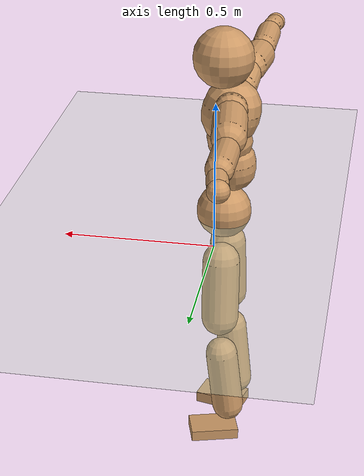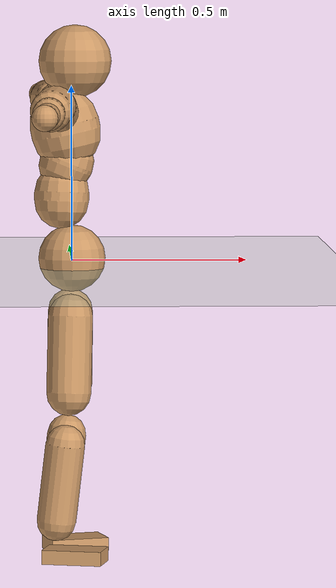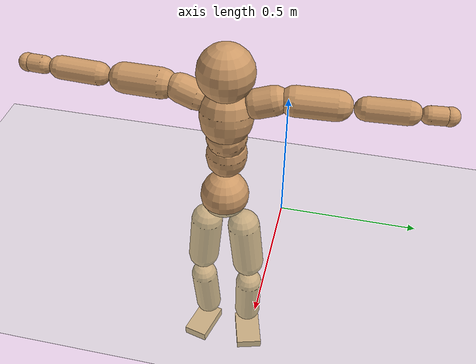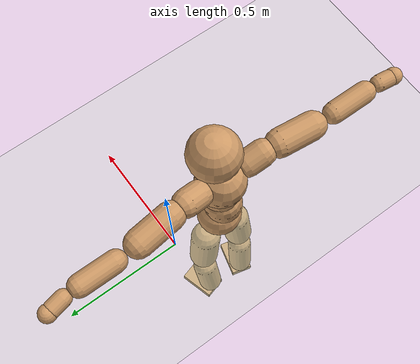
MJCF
<mujoco model="humanoid">
  <compiler coordinate="local"/>
  <default>
    <joint damping="0.0" armature="0.01" stiffness="0.0" limited="true"/>
    <geom conaffinity="1" condim="3" contype="7" margin="0.001" rgba="0.8 0.6 .4 1"/>
  </default>
  <asset>
    <texture type="skybox" builtin="gradient" rgb1=".4 .5 .6" rgb2="0 0 0" width="100" height="100"/>
    <texture builtin="flat" height="1278" mark="cross" markrgb="1 1 1" name="texgeom" random="0.01" rgb1="0.8 0.6 0.4" rgb2="0.8 0.6 0.4" type="cube" width="127"/>
    <texture builtin="checker" height="100" name="texplane" rgb1="0 0 0" rgb2="0.8 0.8 0.8" type="2d" width="100"/>
    <material name="MatPlane" reflectance="0.5" shininess="1" specular="1" texrepeat="60 60" texture="texplane"/>
    <material name="geom" texture="texgeom" texuniform="true"/>
  </asset>
  <worldbody>
    <light cutoff="100" diffuse="1 1 1" dir="-0 0 -1.3" directional="true" exponent="1" pos="0 0 1.3" specular=".1 .1 .1"/>
    <geom conaffinity="1" condim="3" name="floor" pos="0 0 0" rgba="0.8 0.9 0.8 1" size="100 100 .2" type="plane" material="MatPlane"/>
    <body name="Pelvis" pos="-0.0019 -0.2222 0.0261">
      <freejoint name="Pelvis"/>
      <geom type="sphere" contype="1" conaffinity="1" density="500" size="0.0938" pos="0.0000 0.0000 0.0000" name="Pelvis"/>
      <body name="L_Hip" pos="-0.0035 0.069 -0.0865">
        <joint name="L_Hip_x" type="hinge" pos="0 0 0" axis="1 0 0" stiffness="800" damping="80" armature="0.02" range="-180.0000 180.0000"/>
        <joint name="L_Hip_y" type="hinge" pos="0 0 0" axis="0 1 0" stiffness="800" damping="80" armature="0.02" range="-180.0000 180.0000"/>
        <joint name="L_Hip_z" type="hinge" pos="0 0 0" axis="0 0 1" stiffness="800" damping="80" armature="0.02" range="-180.0000 180.0000"/>
        <geom type="capsule" contype="1" conaffinity="1" density="500" fromto="-0.0006 0.0068 -0.0703 -0.0024 0.0273 -0.2812" size="0.0638" name="L_Hip"/>
        <body name="L_Knee" pos="-0.0029 0.0341 -0.3515">
          <joint name="L_Knee_x" type="hinge" pos="0 0 0" axis="1 0 0" stiffness="800" damping="80" armature="0.02" range="-180.0000 180.0000"/>
          <joint name="L_Knee_y" type="hinge" pos="0 0 0" axis="0 1 0" stiffness="800" damping="80" armature="0.02" range="-180.0000 180.0000"/>
          <joint name="L_Knee_z" type="hinge" pos="0 0 0" axis="0 0 1" stiffness="800" damping="80" armature="0.02" range="-180.0000 180.0000"/>
          <geom type="capsule" contype="1" conaffinity="1" density="500" fromto="-0.0084 -0.0026 -0.0725 -0.0335 -0.0105 -0.2900" size="0.055" name="L_Knee"/>
          <body name="L_Ankle" pos="-0.0419 -0.0131 -0.3624">
            <joint name="L_Ankle_x" type="hinge" pos="0 0 0" axis="1 0 0" stiffness="800" damping="80" armature="0.02" range="-180.0000 180.0000"/>
            <joint name="L_Ankle_y" type="hinge" pos="0 0 0" axis="0 1 0" stiffness="800" damping="80" armature="0.02" range="-180.0000 180.0000"/>
            <joint name="L_Ankle_z" type="hinge" pos="0 0 0" axis="0 0 1" stiffness="800" damping="80" armature="0.02" range="-180.0000 180.0000"/>
            <geom type="box" contype="1" conaffinity="1" density="500" pos="0.0574 0.0165 -0.0256" size="0.0829 0.053 0.019" quat="0.9903 0.0000 0.0000 0.1392" name="L_Ankle"/>
            <body name="L_Toe" pos="0.1148 0.0329 -0.0512">
              <joint name="L_Toe_x" type="hinge" pos="0 0 0" axis="1 0 0" stiffness="500" damping="50" armature="0.02" range="-180.0000 180.0000"/>
              <joint name="L_Toe_y" type="hinge" pos="0 0 0" axis="0 1 0" stiffness="500" damping="50" armature="0.02" range="-180.0000 180.0000"/>
              <joint name="L_Toe_z" type="hinge" pos="0 0 0" axis="0 0 1" stiffness="500" damping="50" armature="0.02" range="-180.0000 180.0000"/>
              <geom type="box" contype="1" conaffinity="1" density="500" pos="0.0000 0.0000 0.0254" size="0.0011 0.0025 0.0009" quat="0.9895 0.0000 0.0000 0.1447" name="L_Toe"/>
            </body>
          </body>
        </body>
      </body>
      <body name="R_Hip" pos="-0.0038 -0.0679 -0.0852">
        <joint name="R_Hip_x" type="hinge" pos="0 0 0" axis="1 0 0" stiffness="800" damping="80" armature="0.02" range="-180.0000 180.0000"/>
        <joint name="R_Hip_y" type="hinge" pos="0 0 0" axis="0 1 0" stiffness="800" damping="80" armature="0.02" range="-180.0000 180.0000"/>
        <joint name="R_Hip_z" type="hinge" pos="0 0 0" axis="0 0 1" stiffness="800" damping="80" armature="0.02" range="-180.0000 180.0000"/>
        <geom type="capsule" contype="1" conaffinity="1" density="500" fromto="-0.0018 -0.0070 -0.0712 -0.0073 -0.0279 -0.2847" size="0.0626" name="R_Hip"/>
        <body name="R_Knee" pos="-0.0091 -0.0349 -0.3558">
          <joint name="R_Knee_x" type="hinge" pos="0 0 0" axis="1 0 0" stiffness="800" damping="80" armature="0.02" range="-180.0000 180.0000"/>
          <joint name="R_Knee_y" type="hinge" pos="0 0 0" axis="0 1 0" stiffness="800" damping="80" armature="0.02" range="-180.0000 180.0000"/>
          <joint name="R_Knee_z" type="hinge" pos="0 0 0" axis="0 0 1" stiffness="800" damping="80" armature="0.02" range="-180.0000 180.0000"/>
          <geom type="capsule" contype="1" conaffinity="1" density="500" fromto="-0.0083 0.0029 -0.0725 -0.0334 0.0115 -0.2898" size="0.0549" name="R_Knee"/>
          <body name="R_Ankle" pos="-0.0417 0.0143 -0.3623">
            <joint name="R_Ankle_x" type="hinge" pos="0 0 0" axis="1 0 0" stiffness="800" damping="80" armature="0.02" range="-180.0000 180.0000"/>
            <joint name="R_Ankle_y" type="hinge" pos="0 0 0" axis="0 1 0" stiffness="800" damping="80" armature="0.02" range="-180.0000 180.0000"/>
            <joint name="R_Ankle_z" type="hinge" pos="0 0 0" axis="0 0 1" stiffness="800" damping="80" armature="0.02" range="-180.0000 180.0000"/>
            <geom type="box" contype="1" conaffinity="1" density="500" pos="0.0599 -0.0148 -0.0231" size="0.0842 0.0503 0.0199" quat="0.9927 0.0000 0.0000 -0.1207" name="R_Ankle"/>
            <body name="R_Toe" pos="0.1197 -0.0295 -0.0462">
              <joint name="R_Toe_x" type="hinge" pos="0 0 0" axis="1 0 0" stiffness="500" damping="50" armature="0.02" range="-180.0000 180.0000"/>
              <joint name="R_Toe_y" type="hinge" pos="0 0 0" axis="0 1 0" stiffness="500" damping="50" armature="0.02" range="-180.0000 180.0000"/>
              <joint name="R_Toe_z" type="hinge" pos="0 0 0" axis="0 0 1" stiffness="500" damping="50" armature="0.02" range="-180.0000 180.0000"/>
              <geom type="box" contype="1" conaffinity="1" density="500" pos="0.0000 0.0000 0.0242" size="0.001 0.0025 0.0011" quat="0.9938 0.0000 0.0000 -0.1110" name="R_Toe"/>
            </body>
          </body>
        </body>
      </body>
      <body name="Torso" pos="-0.0313 -0.0023 0.107">
        <joint name="Torso_x" type="hinge" pos="0 0 0" axis="1 0 0" stiffness="1000" damping="100" armature="0.02" range="-180.0000 180.0000"/>
        <joint name="Torso_y" type="hinge" pos="0 0 0" axis="0 1 0" stiffness="1000" damping="100" armature="0.02" range="-180.0000 180.0000"/>
        <joint name="Torso_z" type="hinge" pos="0 0 0" axis="0 0 1" stiffness="1000" damping="100" armature="0.02" range="-180.0000 180.0000"/>
        <geom type="capsule" contype="1" conaffinity="1" density="500" fromto="0.0033 0.0041 0.0792 0.0022 0.0027 0.0528" size="0.0768" name="Torso"/>
        <body name="Spine" pos="0.0055 0.0068 0.1319">
          <joint name="Spine_x" type="hinge" pos="0 0 0" axis="1 0 0" stiffness="1000" damping="100" armature="0.02" range="-180.0000 180.0000"/>
          <joint name="Spine_y" type="hinge" pos="0 0 0" axis="0 1 0" stiffness="1000" damping="100" armature="0.02" range="-180.0000 180.0000"/>
          <joint name="Spine_z" type="hinge" pos="0 0 0" axis="0 0 1" stiffness="1000" damping="100" armature="0.02" range="-180.0000 180.0000"/>
          <geom type="capsule" contype="1" conaffinity="1" density="500" fromto="0.0131 0.0004 0.0318 0.0087 0.0003 0.0212" size="0.0756" name="Spine"/>
          <body name="Chest" pos="0.0219 0.0006 0.0531">
            <joint name="Chest_x" type="hinge" pos="0 0 0" axis="1 0 0" stiffness="1000" damping="100" armature="0.02" range="-180.0000 180.0000"/>
            <joint name="Chest_y" type="hinge" pos="0 0 0" axis="0 1 0" stiffness="1000" damping="100" armature="0.02" range="-180.0000 180.0000"/>
            <joint name="Chest_z" type="hinge" pos="0 0 0" axis="0 0 1" stiffness="1000" damping="100" armature="0.02" range="-180.0000 180.0000"/>
            <geom type="capsule" contype="1" conaffinity="1" density="500" fromto="-0.0170 -0.0014 0.0859 -0.0113 -0.0009 0.0573" size="0.0981" name="Chest"/>
            <body name="Neck" pos="-0.0318 -0.0023 0.1994">
              <joint name="Neck_x" type="hinge" pos="0 0 0" axis="1 0 0" stiffness="500" damping="50" armature="0.02" range="-180.0000 180.0000"/>
              <joint name="Neck_y" type="hinge" pos="0 0 0" axis="0 1 0" stiffness="500" damping="50" armature="0.02" range="-180.0000 180.0000"/>
              <joint name="Neck_z" type="hinge" pos="0 0 0" axis="0 0 1" stiffness="500" damping="50" armature="0.02" range="-180.0000 180.0000"/>
              <geom type="capsule" contype="1" conaffinity="1" density="500" fromto="0.0091 0.0012 0.0119 0.0365 0.0050 0.0477" size="0.045" name="Neck"/>
              <body name="Head" pos="0.0456 0.0062 0.0596">
                <joint name="Head_x" type="hinge" pos="0 0 0" axis="1 0 0" stiffness="500" damping="50" armature="0.02" range="-180.0000 180.0000"/>
                <joint name="Head_y" type="hinge" pos="0 0 0" axis="0 1 0" stiffness="500" damping="50" armature="0.02" range="-180.0000 180.0000"/>
                <joint name="Head_z" type="hinge" pos="0 0 0" axis="0 0 1" stiffness="500" damping="50" armature="0.02" range="-180.0000 180.0000"/>
                <geom type="sphere" contype="1" conaffinity="1" density="500" size="0.1017" pos="0.0000 0.0000 0.0000" name="Head"/>
              </body>
            </body>
            <body name="L_Thorax" pos="-0.0241 0.0831 0.1169">
              <joint name="L_Thorax_x" type="hinge" pos="0 0 0" axis="1 0 0" stiffness="500" damping="50" armature="0.02" range="-180.0000 180.0000"/>
              <joint name="L_Thorax_y" type="hinge" pos="0 0 0" axis="0 1 0" stiffness="500" damping="50" armature="0.02" range="-180.0000 180.0000"/>
              <joint name="L_Thorax_z" type="hinge" pos="0 0 0" axis="0 0 1" stiffness="500" damping="50" armature="0.02" range="-180.0000 180.0000"/>
              <geom type="capsule" contype="1" conaffinity="1" density="500" fromto="-0.0025 0.0198 0.0058 -0.0101 0.0791 0.0233" size="0.0538" name="L_Thorax"/>
              <body name="L_Shoulder" pos="-0.0126 0.0989 0.0291">
                <joint name="L_Shoulder_x" type="hinge" pos="0 0 0" axis="1 0 0" stiffness="500" damping="50" armature="0.02" range="-720.0000 720.0000"/>
                <joint name="L_Shoulder_y" type="hinge" pos="0 0 0" axis="0 1 0" stiffness="500" damping="50" armature="0.02" range="-720.0000 720.0000"/>
                <joint name="L_Shoulder_z" type="hinge" pos="0 0 0" axis="0 0 1" stiffness="500" damping="50" armature="0.02" range="-720.0000 720.0000"/>
                <geom type="capsule" contype="1" conaffinity="1" density="500" fromto="-0.0051 0.0486 -0.0021 -0.0206 0.1944 -0.0085" size="0.0549" name="L_Shoulder"/>
                <body name="L_Elbow" pos="-0.0257 0.243 -0.0107">
                  <joint name="L_Elbow_x" type="hinge" pos="0 0 0" axis="1 0 0" stiffness="500" damping="50" armature="0.02" range="-720.0000 720.0000"/>
                  <joint name="L_Elbow_y" type="hinge" pos="0 0 0" axis="0 1 0" stiffness="500" damping="50" armature="0.02" range="-720.0000 720.0000"/>
                  <joint name="L_Elbow_z" type="hinge" pos="0 0 0" axis="0 0 1" stiffness="500" damping="50" armature="0.02" range="-720.0000 720.0000"/>
                  <geom type="capsule" contype="1" conaffinity="1" density="500" fromto="-0.0004 0.0480 0.0015 -0.0015 0.1919 0.0061" size="0.0426" name="L_Elbow"/>
                  <body name="L_Wrist" pos="-0.0019 0.2398 0.0076">
                    <joint name="L_Wrist_x" type="hinge" pos="0 0 0" axis="1 0 0" stiffness="300" damping="30" armature="0.02" range="-180.0000 180.0000"/>
                    <joint name="L_Wrist_y" type="hinge" pos="0 0 0" axis="0 1 0" stiffness="300" damping="30" armature="0.02" range="-180.0000 180.0000"/>
                    <joint name="L_Wrist_z" type="hinge" pos="0 0 0" axis="0 0 1" stiffness="300" damping="30" armature="0.02" range="-180.0000 180.0000"/>
                    <geom type="capsule" contype="1" conaffinity="1" density="500" fromto="-0.0032 0.0170 -0.0012 -0.0129 0.0680 -0.0048" size="0.0326" name="L_Wrist"/>
                    <body name="L_Hand" pos="-0.0161 0.085 -0.006">
                      <joint name="L_Hand_x" type="hinge" pos="0 0 0" axis="1 0 0" stiffness="300" damping="30" armature="0.02" range="-180.0000 180.0000"/>
                      <joint name="L_Hand_y" type="hinge" pos="0 0 0" axis="0 1 0" stiffness="300" damping="30" armature="0.02" range="-180.0000 180.0000"/>
                      <joint name="L_Hand_z" type="hinge" pos="0 0 0" axis="0 0 1" stiffness="300" damping="30" armature="0.02" range="-180.0000 180.0000"/>
                      <geom type="sphere" contype="1" conaffinity="1" density="500" size="0.0340" pos="0.0000 0.0000 0.0000" name="L_Hand"/>
                    </body>
                  </body>
                </body>
              </body>
            </body>
            <body name="R_Thorax" pos="-0.029 -0.0877 0.1132">
              <joint name="R_Thorax_x" type="hinge" pos="0 0 0" axis="1 0 0" stiffness="500" damping="50" armature="0.02" range="-180.0000 180.0000"/>
              <joint name="R_Thorax_y" type="hinge" pos="0 0 0" axis="0 1 0" stiffness="500" damping="50" armature="0.02" range="-180.0000 180.0000"/>
              <joint name="R_Thorax_z" type="hinge" pos="0 0 0" axis="0 0 1" stiffness="500" damping="50" armature="0.02" range="-180.0000 180.0000"/>
              <geom type="capsule" contype="1" conaffinity="1" density="500" fromto="-0.0021 -0.0212 0.0066 -0.0082 -0.0849 0.0263" size="0.0531" name="R_Thorax"/>
              <body name="R_Shoulder" pos="-0.0103 -0.1061 0.0329">
                <joint name="R_Shoulder_x" type="hinge" pos="0 0 0" axis="1 0 0" stiffness="500" damping="50" armature="0.02" range="-720.0000 720.0000"/>
                <joint name="R_Shoulder_y" type="hinge" pos="0 0 0" axis="0 1 0" stiffness="500" damping="50" armature="0.02" range="-720.0000 720.0000"/>
                <joint name="R_Shoulder_z" type="hinge" pos="0 0 0" axis="0 0 1" stiffness="500" damping="50" armature="0.02" range="-720.0000 720.0000"/>
                <geom type="capsule" contype="1" conaffinity="1" density="500" fromto="-0.0044 -0.0479 -0.0024 -0.0176 -0.1917 -0.0095" size="0.0562" name="R_Shoulder"/>
                <body name="R_Elbow" pos="-0.022 -0.2396 -0.0119">
                  <joint name="R_Elbow_x" type="hinge" pos="0 0 0" axis="1 0 0" stiffness="500" damping="50" armature="0.02" range="-720.0000 720.0000"/>
                  <joint name="R_Elbow_y" type="hinge" pos="0 0 0" axis="0 1 0" stiffness="500" damping="50" armature="0.02" range="-720.0000 720.0000"/>
                  <joint name="R_Elbow_z" type="hinge" pos="0 0 0" axis="0 0 1" stiffness="500" damping="50" armature="0.02" range="-720.0000 720.0000"/>
                  <geom type="capsule" contype="1" conaffinity="1" density="500" fromto="-0.0009 -0.0489 0.0012 -0.0034 -0.1955 0.0050" size="0.043" name="R_Elbow"/>
                  <body name="R_Wrist" pos="-0.0043 -0.2444 0.0062">
                    <joint name="R_Wrist_x" type="hinge" pos="0 0 0" axis="1 0 0" stiffness="300" damping="30" armature="0.02" range="-180.0000 180.0000"/>
                    <joint name="R_Wrist_y" type="hinge" pos="0 0 0" axis="0 1 0" stiffness="300" damping="30" armature="0.02" range="-180.0000 180.0000"/>
                    <joint name="R_Wrist_z" type="hinge" pos="0 0 0" axis="0 0 1" stiffness="300" damping="30" armature="0.02" range="-180.0000 180.0000"/>
                    <geom type="capsule" contype="1" conaffinity="1" density="500" fromto="-0.0019 -0.0171 -0.0009 -0.0078 -0.0684 -0.0035" size="0.0334" name="R_Wrist"/>
                    <body name="R_Hand" pos="-0.0097 -0.0856 -0.0044">
                      <joint name="R_Hand_x" type="hinge" pos="0 0 0" axis="1 0 0" stiffness="300" damping="30" armature="0.02" range="-180.0000 180.0000"/>
                      <joint name="R_Hand_y" type="hinge" pos="0 0 0" axis="0 1 0" stiffness="300" damping="30" armature="0.02" range="-180.0000 180.0000"/>
                      <joint name="R_Hand_z" type="hinge" pos="0 0 0" axis="0 0 1" stiffness="300" damping="30" armature="0.02" range="-180.0000 180.0000"/>
                      <geom type="sphere" contype="1" conaffinity="1" density="500" size="0.0345" pos="0.0000 0.0000 0.0000" name="R_Hand"/>
                    </body>
                  </body>
                </body>
              </body>
            </body>
          </body>
        </body>
      </body>
    </body>
  </worldbody>
  <actuator>
    <motor name="L_Hip_x" joint="L_Hip_x" gear="500"/>
    <motor name="L_Hip_y" joint="L_Hip_y" gear="500"/>
    <motor name="L_Hip_z" joint="L_Hip_z" gear="500"/>
    <motor name="L_Knee_x" joint="L_Knee_x" gear="500"/>
    <motor name="L_Knee_y" joint="L_Knee_y" gear="500"/>
    <motor name="L_Knee_z" joint="L_Knee_z" gear="500"/>
    <motor name="L_Ankle_x" joint="L_Ankle_x" gear="500"/>
    <motor name="L_Ankle_y" joint="L_Ankle_y" gear="500"/>
    <motor name="L_Ankle_z" joint="L_Ankle_z" gear="500"/>
    <motor name="L_Toe_x" joint="L_Toe_x" gear="500"/>
    <motor name="L_Toe_y" joint="L_Toe_y" gear="500"/>
    <motor name="L_Toe_z" joint="L_Toe_z" gear="500"/>
    <motor name="R_Hip_x" joint="R_Hip_x" gear="500"/>
    <motor name="R_Hip_y" joint="R_Hip_y" gear="500"/>
    <motor name="R_Hip_z" joint="R_Hip_z" gear="500"/>
    <motor name="R_Knee_x" joint="R_Knee_x" gear="500"/>
    <motor name="R_Knee_y" joint="R_Knee_y" gear="500"/>
    <motor name="R_Knee_z" joint="R_Knee_z" gear="500"/>
    <motor name="R_Ankle_x" joint="R_Ankle_x" gear="500"/>
    <motor name="R_Ankle_y" joint="R_Ankle_y" gear="500"/>
    <motor name="R_Ankle_z" joint="R_Ankle_z" gear="500"/>
    <motor name="R_Toe_x" joint="R_Toe_x" gear="500"/>
    <motor name="R_Toe_y" joint="R_Toe_y" gear="500"/>
    <motor name="R_Toe_z" joint="R_Toe_z" gear="500"/>
    <motor name="Torso_x" joint="Torso_x" gear="500"/>
    <motor name="Torso_y" joint="Torso_y" gear="500"/>
    <motor name="Torso_z" joint="Torso_z" gear="500"/>
    <motor name="Spine_x" joint="Spine_x" gear="500"/>
    <motor name="Spine_y" joint="Spine_y" gear="500"/>
    <motor name="Spine_z" joint="Spine_z" gear="500"/>
    <motor name="Chest_x" joint="Chest_x" gear="500"/>
    <motor name="Chest_y" joint="Chest_y" gear="500"/>
    <motor name="Chest_z" joint="Chest_z" gear="500"/>
    <motor name="Neck_x" joint="Neck_x" gear="500"/>
    <motor name="Neck_y" joint="Neck_y" gear="500"/>
    <motor name="Neck_z" joint="Neck_z" gear="500"/>
    <motor name="Head_x" joint="Head_x" gear="500"/>
    <motor name="Head_y" joint="Head_y" gear="500"/>
    <motor name="Head_z" joint="Head_z" gear="500"/>
    <motor name="L_Thorax_x" joint="L_Thorax_x" gear="500"/>
    <motor name="L_Thorax_y" joint="L_Thorax_y" gear="500"/>
    <motor name="L_Thorax_z" joint="L_Thorax_z" gear="500"/>
    <motor name="L_Shoulder_x" joint="L_Shoulder_x" gear="500"/>
    <motor name="L_Shoulder_y" joint="L_Shoulder_y" gear="500"/>
    <motor name="L_Shoulder_z" joint="L_Shoulder_z" gear="500"/>
    <motor name="L_Elbow_x" joint="L_Elbow_x" gear="500"/>
    <motor name="L_Elbow_y" joint="L_Elbow_y" gear="500"/>
    <motor name="L_Elbow_z" joint="L_Elbow_z" gear="500"/>
    <motor name="L_Wrist_x" joint="L_Wrist_x" gear="500"/>
    <motor name="L_Wrist_y" joint="L_Wrist_y" gear="500"/>
    <motor name="L_Wrist_z" joint="L_Wrist_z" gear="500"/>
    <motor name="L_Hand_x" joint="L_Hand_x" gear="500"/>
    <motor name="L_Hand_y" joint="L_Hand_y" gear="500"/>
    <motor name="L_Hand_z" joint="L_Hand_z" gear="500"/>
    <motor name="R_Thorax_x" joint="R_Thorax_x" gear="500"/>
    <motor name="R_Thorax_y" joint="R_Thorax_y" gear="500"/>
    <motor name="R_Thorax_z" joint="R_Thorax_z" gear="500"/>
    <motor name="R_Shoulder_x" joint="R_Shoulder_x" gear="500"/>
    <motor name="R_Shoulder_y" joint="R_Shoulder_y" gear="500"/>
    <motor name="R_Shoulder_z" joint="R_Shoulder_z" gear="500"/>
    <motor name="R_Elbow_x" joint="R_Elbow_x" gear="500"/>
    <motor name="R_Elbow_y" joint="R_Elbow_y" gear="500"/>
    <motor name="R_Elbow_z" joint="R_Elbow_z" gear="500"/>
    <motor name="R_Wrist_x" joint="R_Wrist_x" gear="500"/>
    <motor name="R_Wrist_y" joint="R_Wrist_y" gear="500"/>
    <motor name="R_Wrist_z" joint="R_Wrist_z" gear="500"/>
    <motor name="R_Hand_x" joint="R_Hand_x" gear="500"/>
    <motor name="R_Hand_y" joint="R_Hand_y" gear="500"/>
    <motor name="R_Hand_z" joint="R_Hand_z" gear="500"/>
  </actuator>
  <contact>
    <exclude body1="Torso" body2="Chest"/>
    <exclude body1="Head" body2="Chest"/>
    <exclude body1="R_Knee" body2="R_Toe"/>
    <exclude body1="R_Knee" body2="L_Ankle"/>
    <exclude body1="R_Knee" body2="L_Toe"/>
    <exclude body1="L_Knee" body2="L_Toe"/>
    <exclude body1="L_Knee" body2="R_Ankle"/>
    <exclude body1="L_Knee" body2="R_Toe"/>
    <exclude body1="L_Shoulder" body2="Chest"/>
    <exclude body1="R_Shoulder" body2="Chest"/>
  </contact>
  <sensor/>
  <size njmax="700" nconmax="700"/>
</mujoco>
